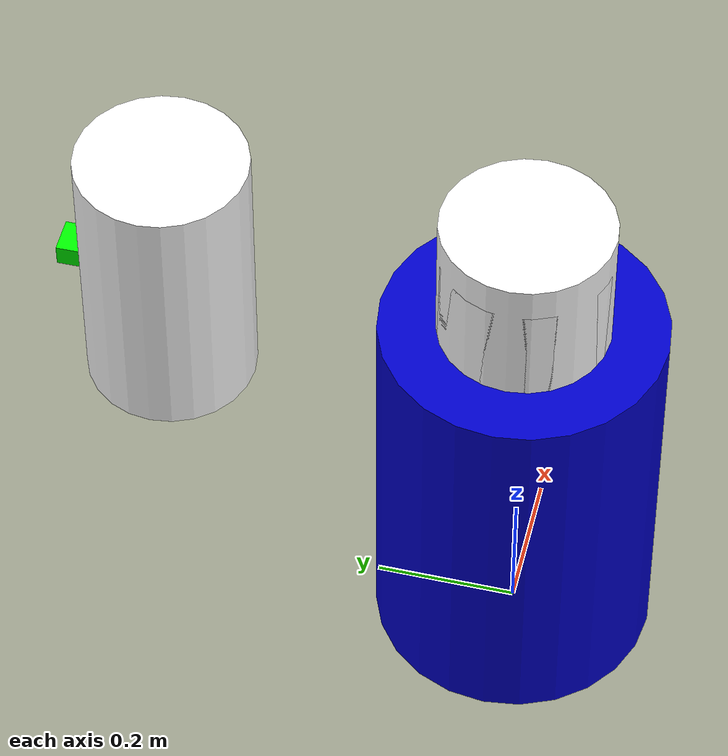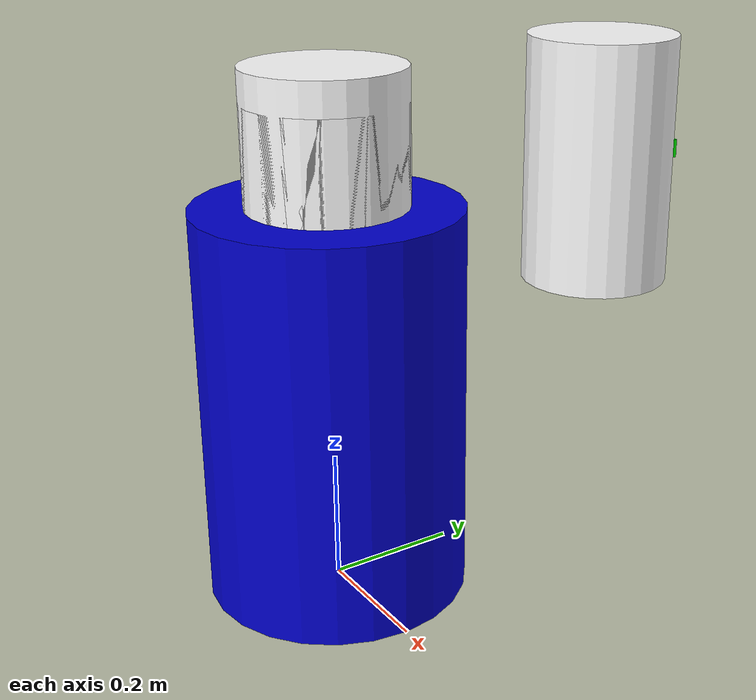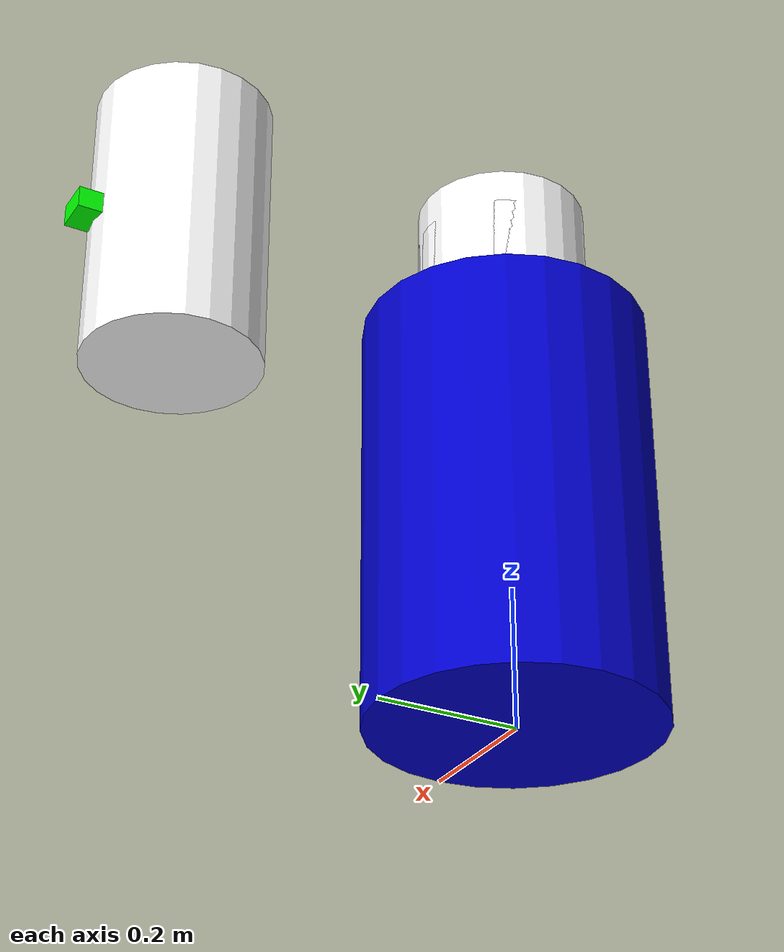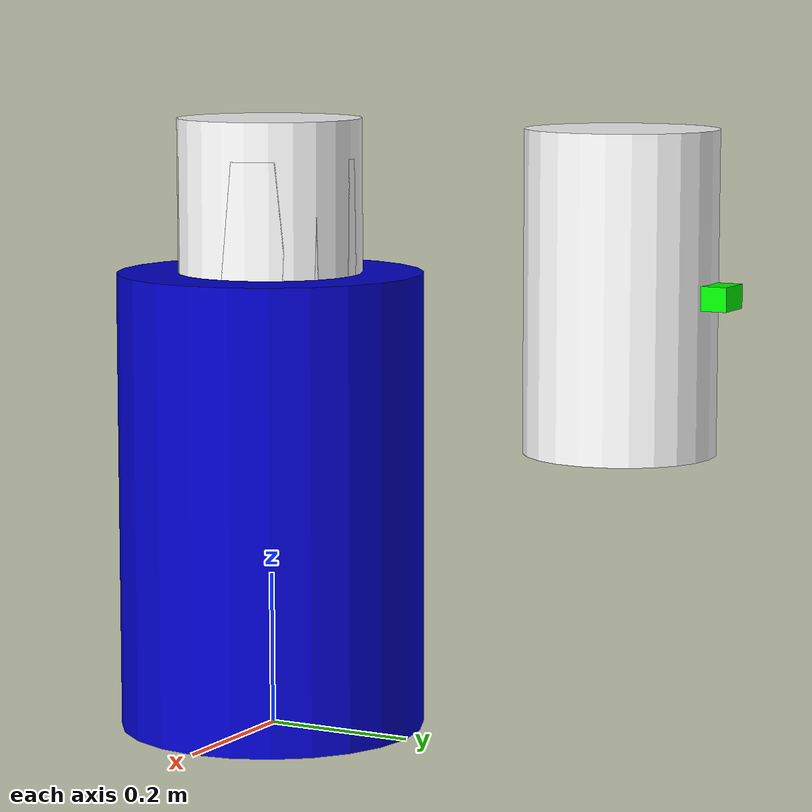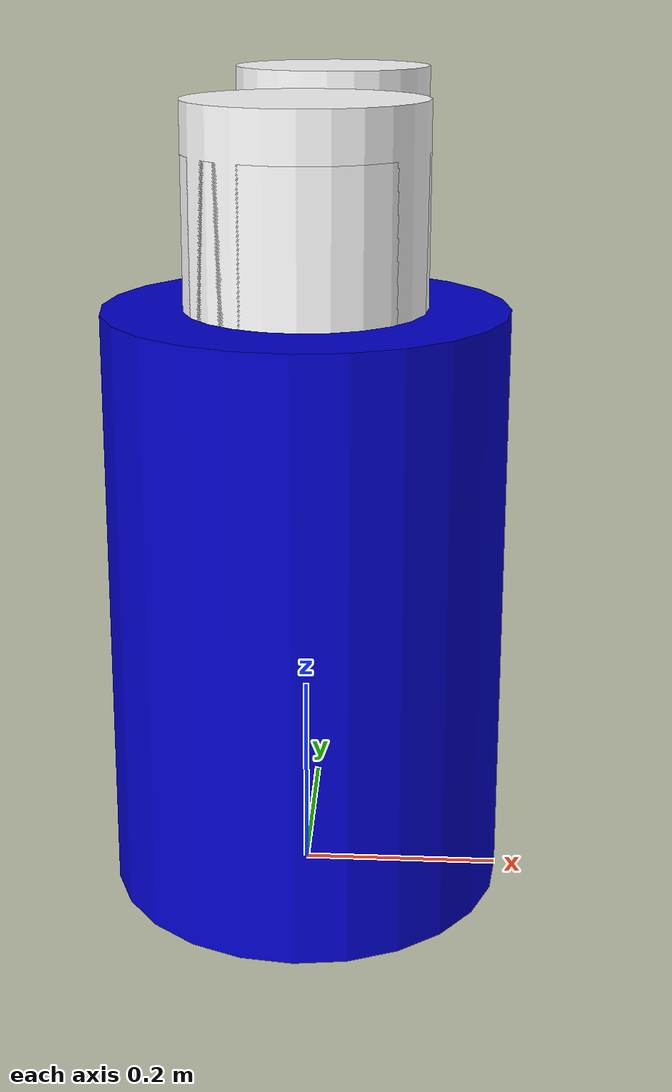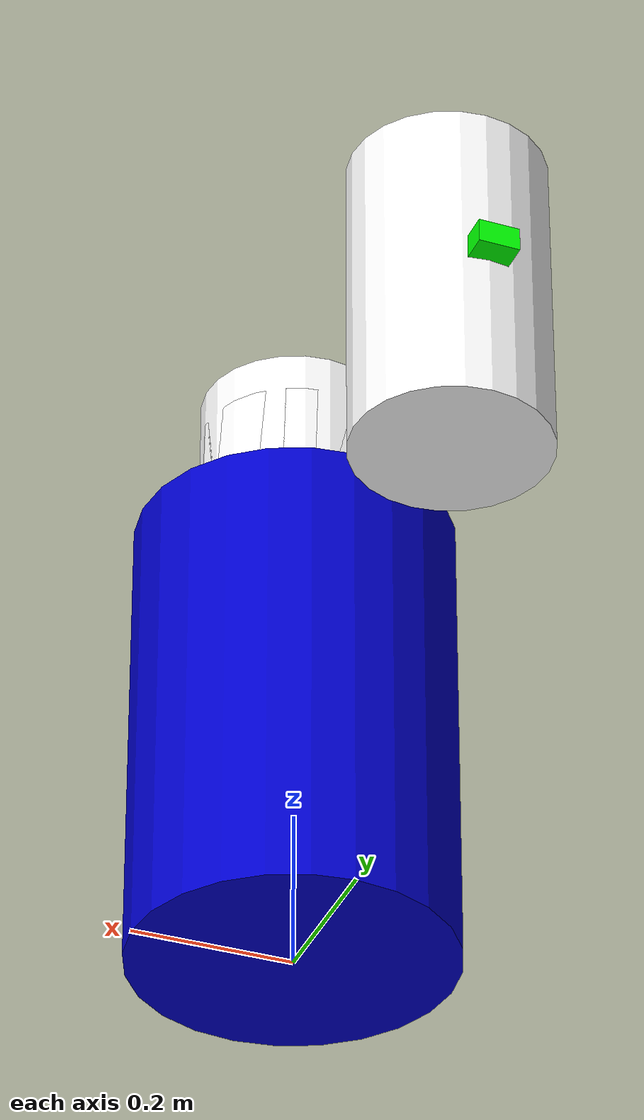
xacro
<?xml version="1.0"?>
<robot xmlns:xacro="http://www.ros.org/wiki/xacro" name="ThreeLinks">

<xacro:property name="l0" value="0.6" />
<xacro:property name="l1" value="0.5" />
<xacro:property name="l2" value="0.5" />

<xacro:property name="m1" value="6.5" />
<xacro:property name="m2" value="3.5" />
<xacro:property name="m3" value="2.5" />

<xacro:property name="r0" value="0.4" />
<xacro:property name="r1" value="0.2" />
<xacro:property name="r2" value="0.2" />

<xacro:property name="lb" value="0.0" />
<xacro:property name="ub" value="3.1415" />
<xacro:property name="PI" value="3.1415" />

  <material name="blue">
    <color rgba="0 0 0.8 1"/>
  </material>

  <material name="white">
    <color rgba="1 1 1 1"/>
  </material>

  <material name="green">
    <color rgba="0 1 0 1"/>
  </material>

  <material name="red">
    <color rgba="1 0 0 1"/>
  </material>

  <link name="world"/>
  <joint name="arm_to_world_fixed" type="fixed">
    <parent link="world"/>
    <child link="base_link"/>
    <origin xyz="0 0 0" rpy="0 0 0" />
  </joint>

  <link name="base_link">
   <inertial>
     <origin xyz="0 0 0" rpy="0 0 0"/>
     <mass value="0"/>
     <inertia ixx="0"  ixy="0"  ixz="0" iyy="0" iyz="0" izz="0" />
   </inertial>

    <visual>
      <geometry>
	      <cylinder length="${l0}" radius="0.2"/>
      </geometry>
      <material name="blue"/>
      <origin rpy="0 0 0" xyz="0 0 ${l0/2}"/>
    </visual>
  </link>

  <link name="link_1">
   <inertial>
	   <origin xyz="0 0 ${l0 - r0}" rpy="0 0 0"/>
     <mass value="${m1}"/>
     <inertia ixx="1"  ixy="0"  ixz="0" iyy="1" iyz="0" izz="1" />
   </inertial>

    <visual>
      <geometry>
	      <cylinder length="0.3" radius="0.12"/>
      </geometry>
      <material name="white"/>
      <origin rpy="0 0 0" xyz="0 0 0"/>
    </visual>
  </link>

  <joint name="joint_1" type="revolute">
    <axis xyz="0 0 1"/>
    <limit effort="1000.0" lower="${lb}" upper="${ub}" velocity="0.5"/>
    <origin rpy="0 0 0" xyz="0 0 ${l0}"/>
    <parent link="base_link"/>
    <child link="link_1"/>
  </joint>

   <link name="link_2">
   <inertial>
	   <origin xyz="0 ${r1} 0" rpy="0 0 0"/>
     <mass value="${m2}"/>
     <inertia ixx="1"  ixy="0"  ixz="0" iyy="1" iyz="0" izz="1" />
   </inertial>

    <visual>
      <geometry>
	      <cylinder length="0.4" radius="0.12"/>
      </geometry>
      <material name="white"/>
      <origin rpy="0 0 0" xyz="0 0 0"/>
    </visual>
  </link>

  <joint name="joint_2" type="revolute">
    <axis xyz="-1 0 0"/>
    <limit effort="1000.0" lower="${lb}" upper="${ub}" velocity="0.5"/>
    <origin rpy="0 0 0" xyz="0 0 0"/>
    <parent link="link_1"/>
    <child link="link_2"/>
  </joint>

  <link name="link_3">
   <inertial>
	   <origin xyz="0 ${r2} 0" rpy="0 0 0"/>
     <mass value="${m3}"/>
     <inertia ixx="1"  ixy="0"  ixz="0" iyy="1" iyz="0" izz="1" />
   </inertial>

    <visual>
      <geometry>
	      <cylinder length="0.4" radius="0.12"/>
      </geometry>
      <material name="white"/>
      <origin rpy="0 0 0" xyz="0 0 0"/>
    </visual>
  </link>

  <joint name="joint_3" type="revolute">
    <axis xyz="-1 0 0"/>
    <limit effort="1000.0" lower="${lb}" upper="${ub}" velocity="0.5"/>
    <origin rpy="0 0 0" xyz="0 ${l1} 0"/>
    <parent link="link_2"/>
    <child link="link_3"/>
  </joint>

  <link name="EndEffector">
   <inertial>
     <origin xyz="0 0 0" rpy="0 0 0"/>
     <mass value="0"/>
     <inertia ixx="0"  ixy="0"  ixz="0" iyy="0" iyz="0" izz="0" />
   </inertial>

    <visual>
      <geometry>
	  <box size="0.05 0.1 0.03"/>
      </geometry>
      <material name="green"/>
      <origin rpy="0 0 0" xyz="0 0 0"/>
    </visual>
  </link>

  <joint name="joint_4" type="fixed">
    <axis xyz="0 1 0"/>
    <origin rpy="0 0 0" xyz="0 0.1 0"/>
    <parent link="link_3"/>
    <child link="EndEffector"/>
  </joint>

</robot>
